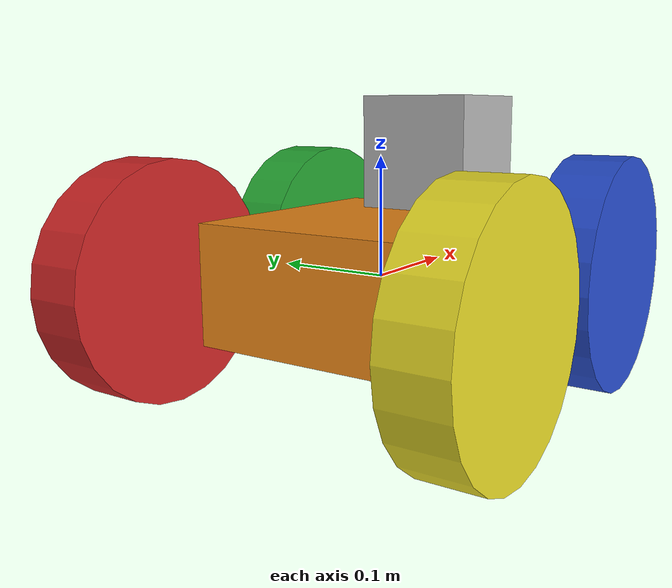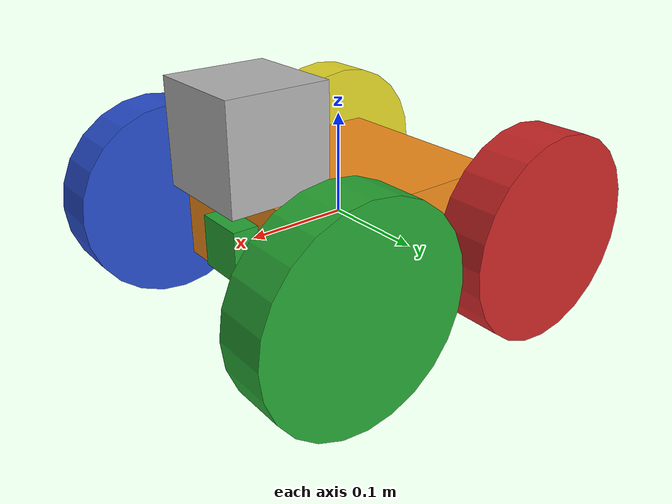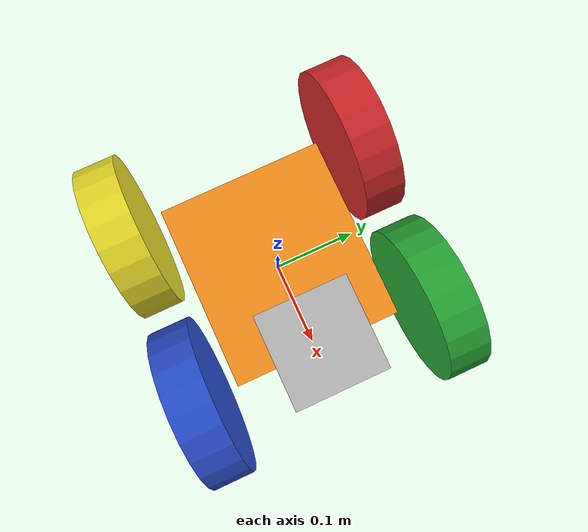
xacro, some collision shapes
<?xml version='1.0'?>

<robot name="my_bot" xmlns:xacro="http://www.ros.org/wiki/xacro">

  <xacro:include filename="$(find udacity_bot)/urdf/my_bot.gazebo" />

  <link name="robot_footprint"></link>

  <joint name="robot_footprint_joint" type="fixed">
    <origin xyz="0 0 0" rpy="0 0 0" />
    <parent link="robot_footprint"/>
    <child link="chassis" />
  </joint>

  <link name='chassis'>
    <pose>0 0 0.5 0 0 0</pose>

    <inertial>
      <mass value="10.0"/>
      <origin xyz="0.0 0 0" rpy=" 0 0 0"/>
      <inertia
          ixx="0.5" ixy="0" ixz="0"
          iyy="0.5" iyz="0"
          izz="0.5"
      />
    </inertial>

    <collision name='collision'>
      <origin xyz="0 0 0" rpy=" 0 0 0"/>
      <geometry>
        <box size=".22 .2 .1"/>
      </geometry>
    </collision>

    <visual name='chassis_visual'>
      <origin xyz="0 0 0" rpy=" 0 0 0"/>
      <geometry>
        <box size=".22 .2 .1"/>
      </geometry>
    </visual>

  </link>

  <link name='front_right_wheel'>
    <pose>0 0 0 0 0 0</pose>

    <inertial>
      <mass value="5.0"/>
      <origin xyz="0.0 0 0" rpy="0 1.5707 1.5707"/>
      <inertia
          ixx="0.1" ixy="0" ixz="0"
          iyy="0.1" iyz="0"
          izz="0.1"
      />
    </inertial>

    <collision name='front_right_wheel_collision'>
      <origin xyz="0 0 0" rpy="0 1.5707 1.5707"/>
      <geometry>
        <cylinder radius="0.1" length="0.05"/>
      </geometry>
      <surface>
        <friction>
          <ode>
            <mu>0.0</mu>
            <mu2>0.0</mu2>
	    <slip1>1.0</slip1>
	    <slip2>1.0</slip2>
          </ode>
        </friction>
      </surface>
    </collision>

    <visual name='front_right_wheel_visual'>
      <origin xyz="0 0 0" rpy="0 1.5707 1.5707"/>
      <geometry>
	<cylinder radius="0.1" length="0.05"/>
      </geometry>
    </visual>
  </link>

  <joint type="continuous" name="front_right_wheel_hinge">
    <origin xyz="0.11 -0.15 0" rpy="0 0 0"/>
    <child link="front_right_wheel"/>
    <parent link="chassis"/>
    <axis xyz="0 1 0" rpy="0 0 0"/>
    <limit effort="10000" velocity="1000"/>
    <joint_properties damping="1.0" friction="1.0"/>
  </joint>

  <link name='front_left_wheel'>
    <pose>0 0 0 0 0 0</pose>

    <inertial>
      <mass value="5.0"/>
      <origin xyz="0.0 0 0" rpy="0 1.5707 1.5707"/>
      <inertia
          ixx="0.1" ixy="0" ixz="0"
          iyy="0.1" iyz="0"
          izz="0.1"
      />
    </inertial>

    <collision name='front_left_wheel_collision'>
      <origin xyz="0 0 0" rpy="0 1.5707 1.5707"/>
      <geometry>
        <cylinder radius="0.1" length="0.05"/>
      </geometry>
      <surface>
        <friction>
          <ode>
            <mu>0.0</mu>
            <mu2>0.0</mu2>
	    <slip1>1.0</slip1>
	    <slip2>1.0</slip2>
          </ode>
        </friction>
      </surface>
    </collision>

    <visual name='front_left_wheel_visual'>
      <origin xyz="0 0 0" rpy="0 1.5707 1.5707"/>
      <geometry>
	<cylinder radius="0.1" length="0.05"/>
      </geometry>
    </visual>
  </link>

  <joint type="continuous" name="front_left_wheel_hinge">
    <origin xyz="0.11 0.15 0" rpy="0 0 0"/>
    <child link="front_left_wheel"/>
    <parent link="chassis"/>
    <axis xyz="0 1 0" rpy="0 0 0"/>
    <limit effort="10000" velocity="1000"/>
    <joint_properties damping="1.0" friction="1.0"/>
  </joint>

  <link name='back_right_wheel'>
    <pose>0 0 0 0 0 0</pose>

    <inertial>
      <mass value="5.0"/>
      <origin xyz="0.0 0 0" rpy="0 1.5707 1.5707"/>
      <inertia
          ixx="0.1" ixy="0" ixz="0"
          iyy="0.1" iyz="0"
          izz="0.1"
      />
    </inertial>

    <collision name='back_right_wheel_collision'>
      <origin xyz="0 0 0" rpy="0 1.5707 1.5707"/>
      <geometry>
        <cylinder radius="0.1" length="0.05"/>
      </geometry>
      <surface>
        <friction>
          <ode>
            <mu>0.0</mu>
            <mu2>0.0</mu2>
	    <slip1>1.0</slip1>
	    <slip2>1.0</slip2>
          </ode>
        </friction>
      </surface>
    </collision>

    <visual name='back_right_wheel_visual'>
      <origin xyz="0 0 0" rpy="0 1.5707 1.5707"/>
      <geometry>
	<cylinder radius="0.1" length="0.05"/>
      </geometry>
    </visual>
  </link>

  <joint type="continuous" name="back_right_wheel_hinge">
    <origin xyz="-0.11 -0.15 0" rpy="0 0 0"/>
    <child link="back_right_wheel"/>
    <parent link="chassis"/>
    <axis xyz="0 1 0" rpy="0 0 0"/>
    <limit effort="10000" velocity="1000"/>
    <joint_properties damping="1.0" friction="1.0"/>
  </joint>

  <link name='back_left_wheel'>
    <pose>0 0 0 0 0 0</pose>

    <inertial>
      <mass value="5.0"/>
      <origin xyz="0.0 0 0" rpy="0 1.5707 1.5707"/>
      <inertia
          ixx="0.1" ixy="0" ixz="0"
          iyy="0.1" iyz="0"
          izz="0.1"
      />
    </inertial>

    <collision name='back_left_wheel_collision'>
      <origin xyz="0 0 0" rpy="0 1.5707 1.5707"/>
      <geometry>
        <cylinder radius="0.1" length="0.05"/>
      </geometry>
      <surface>
        <friction>
          <ode>
            <mu>0.0</mu>
            <mu2>0.0</mu2>
	    <slip1>1.0</slip1>
	    <slip2>1.0</slip2>
          </ode>
        </friction>
      </surface>
    </collision>

    <visual name='back_left_wheel_visual'>
      <origin xyz="0 0 0" rpy="0 1.5707 1.5707"/>
      <geometry>
	<cylinder radius="0.1" length="0.05"/>
      </geometry>
    </visual>
  </link>

  <joint type="continuous" name="back_left_wheel_hinge">
    <origin xyz="-0.11 0.15 0" rpy="0 0 0"/>
    <child link="back_left_wheel"/>
    <parent link="chassis"/>
    <axis xyz="0 1 0" rpy="0 0 0"/>
    <limit effort="10000" velocity="1000"/>
    <joint_properties damping="1.0" friction="1.0"/>
  </joint>

  <link name='camera'>
    <pose>0 0 0 0 0 0</pose>
    <inertial>
      <mass value="0.1"/>
      <origin xyz="0.0 0 0" rpy="0 0 0"/>
      <inertia
          ixx="1e-6" ixy="0" ixz="0"
          iyy="1e-6" iyz="0"
          izz="1e-6"
      />
    </inertial>

    <collision name='camera_collision'>
      <origin xyz="0 0 0" rpy="0 0 0"/>
      <geometry>
	<box size="0.05 0.05 0.05"/>
      </geometry>
    </collision>

    <visual name='camera_visual'>
      <origin xyz="0 0 0" rpy="0 0 0"/>
      <geometry>
	<box size="0.05 0.05 0.05"/>
      </geometry>
    </visual>
  </link>

  <joint type="fixed" name="camera_joint">
    <origin xyz="0.11 0 0" rpy="0 0 0"/>
    <child link="camera"/>
    <parent link="chassis"/>
  </joint>

  <link name='hokuyo'>
    <pose>0 0 0 0 0 0</pose>
    <inertial>
      <mass value="0.1"/>
      <origin xyz="0.0 0 0" rpy="0 0 0"/>
      <inertia
          ixx="1e-6" ixy="0" ixz="0"
          iyy="1e-6" iyz="0"
          izz="1e-6"
      />
    </inertial>

    <collision name='hokuyo_collision'>
      <origin xyz="0 0 0" rpy="0 0 0"/>
      <geometry>
	<box size="0.1 0.1 0.1"/>
      </geometry>
    </collision>

    <visual name='hokuyo_visual'>
      <origin xyz="0 0 0" rpy="0 0 0"/>
      <geometry>
	<mesh filename="package://udacity_bot/meshes/hokuyo.dae"/>
      </geometry>
    </visual>
  </link>

  <joint type="fixed" name="hokuyo_joint">
    <origin xyz="0.1 0 0.1" rpy="0 0 0"/>
    <child link="hokuyo"/>
    <parent link="chassis"/>
  </joint>

  <gazebo reference="chassis">
    <material>Gazebo/Orange</material>
  </gazebo>
  <gazebo reference="front_left_wheel">
    <material>Gazebo/Green</material>
  </gazebo>
  <gazebo reference="front_right_wheel">
    <material>Gazebo/Blue</material>
  </gazebo>
    <gazebo reference="back_left_wheel">
    <material>Gazebo/Red</material>
  </gazebo>
  <gazebo reference="back_right_wheel">
    <material>Gazebo/Yellow</material>
  </gazebo>
</robot>
